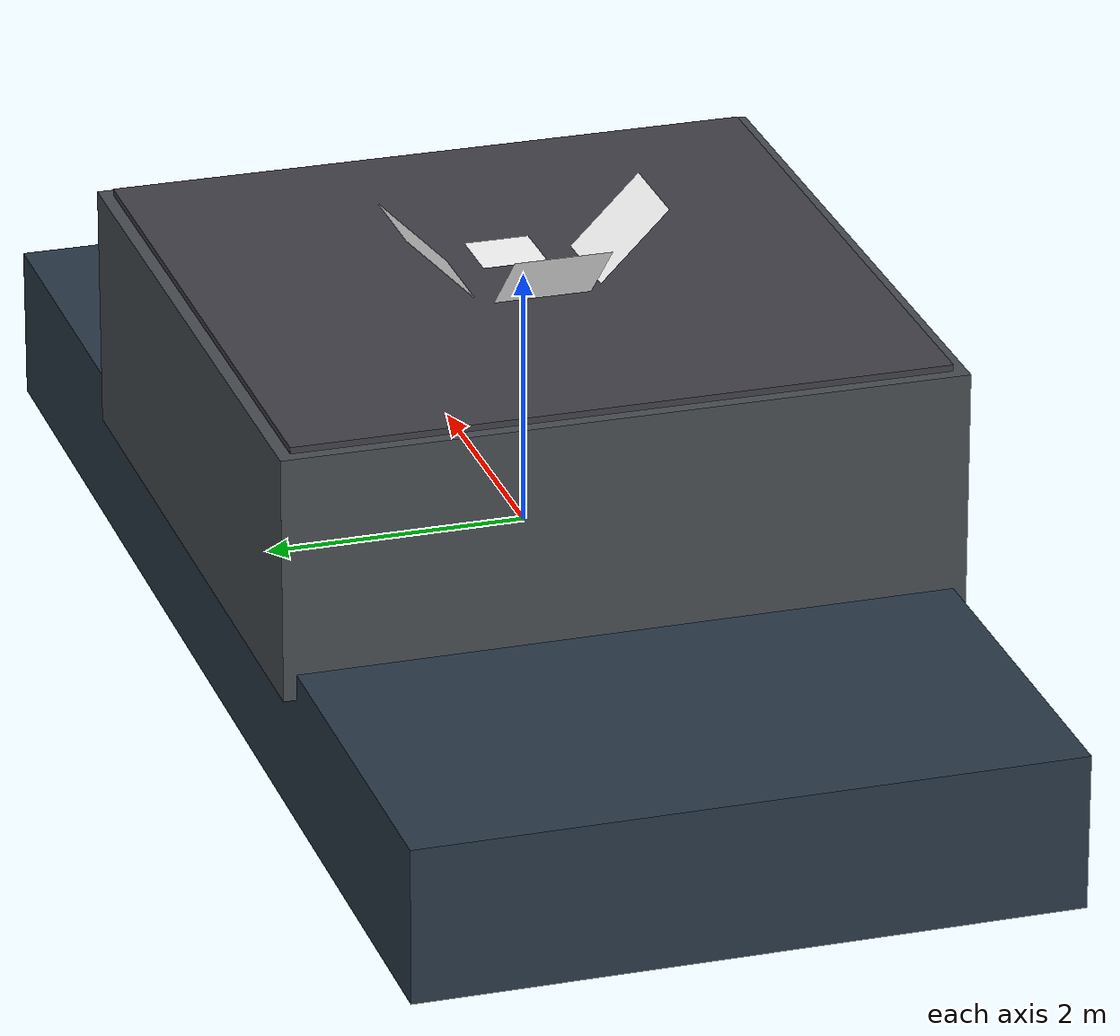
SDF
<?xml version="1.0" encoding="UTF-8"?>
<sdf version="1.9">
  <model name="landing_vessel">
    <!-- 模型原点即 vessel_body 参考点，neutral world z≈0；landing deck 固定在 +2 m。 -->
    <pose>0 0 0 0 0 0</pose>
    <static>false</static>
    <self_collide>false</self_collide>

    <link name="vessel_body">
      <!-- 第一版只做解析刚体运动，不启用重力、浮力或水动力。 -->
      <gravity>false</gravity>
      <inertial>
        <mass>12000</mass>
        <inertia>
          <ixx>34250</ixx>
          <iyy>145000</iyy>
          <izz>171250</izz>
        </inertia>
      </inertial>

      <collision name="hull_collision">
        <pose>0 0 -0.35 0 0 0</pose>
        <geometry>
          <box><size>11 5 1.2</size></box>
        </geometry>
      </collision>
      <visual name="hull_visual">
        <pose>0 0 -0.35 0 0 0</pose>
        <geometry>
          <box><size>11 5 1.2</size></box>
        </geometry>
        <material>
          <ambient>0.12 0.16 0.20 1</ambient>
          <diffuse>0.16 0.22 0.28 1</diffuse>
          <specular>0.08 0.08 0.08 1</specular>
        </material>
      </visual>

      <collision name="deck_support_collision">
        <pose>0 0 1.0 0 0 0</pose>
        <geometry>
          <box><size>5.2 5.2 1.9</size></box>
        </geometry>
      </collision>
      <visual name="deck_support_visual">
        <pose>0 0 1.0 0 0 0</pose>
        <geometry>
          <box><size>5.2 5.2 1.9</size></box>
        </geometry>
        <material>
          <ambient>0.22 0.24 0.26 1</ambient>
          <diffuse>0.28 0.30 0.32 1</diffuse>
          <specular>0.05 0.05 0.05 1</specular>
        </material>
      </visual>

      <!-- landing_deck frame 定义在甲板表面中心；下列 Marker pose 与 legacy 完全一致。 -->
      <collision name="landing_deck_collision">
        <pose relative_to="landing_deck">0 0 -0.05 0 0 0</pose>
        <geometry>
          <box><size>5 5 0.1</size></box>
        </geometry>
        <surface>
          <friction>
            <ode><mu>1.0</mu><mu2>1.0</mu2></ode>
          </friction>
        </surface>
      </collision>
      <visual name="landing_deck_visual">
        <pose relative_to="landing_deck">0 0 -0.05 0 0 0</pose>
        <geometry>
          <box><size>5 5 0.1</size></box>
        </geometry>
        <material>
          <ambient>0.25 0.25 0.28 1</ambient>
          <diffuse>0.25 0.25 0.28 1</diffuse>
          <specular>0.05 0.05 0.05 1</specular>
        </material>
      </visual>

      <visual name="aruco_marker_far_visual">
        <pose relative_to="landing_deck">0.45 0 0.001 0 0 0</pose>
        <cast_shadows>false</cast_shadows>
        <geometry><plane><normal>0 0 1</normal><size>0.5 0.5</size></plane></geometry>
        <material>
          <diffuse>1 1 1 1</diffuse><specular>0.4 0.4 0.4 1</specular>
          <pbr><metal><albedo_map>model://arucotag/arucotag.png</albedo_map></metal></pbr>
        </material>
      </visual>

      <visual name="aruco_marker_far_secondary_visual">
        <pose relative_to="landing_deck">-0.75 0 0.2851650429449553 0 0.7853981633974483 0</pose>
        <cast_shadows>false</cast_shadows>
        <geometry><plane><normal>0 0 1</normal><size>0.75 0.75</size></plane></geometry>
        <material>
          <diffuse>1 1 1 1</diffuse><specular>0.4 0.4 0.4 1</specular>
          <pbr><metal><albedo_map>model://moving_deck/aruco_id4.pgm</albedo_map></metal></pbr>
        </material>
      </visual>

      <visual name="aruco_marker_far_secondary_roll_positive_visual">
        <pose relative_to="landing_deck">0 0.75 0.2851650429449553 0.7853981633974483 0 0</pose>
        <cast_shadows>false</cast_shadows>
        <geometry><plane><normal>0 0 1</normal><size>0.75 0.75</size></plane></geometry>
        <material>
          <diffuse>1 1 1 1</diffuse><specular>0.4 0.4 0.4 1</specular>
          <pbr><metal><albedo_map>model://moving_deck/aruco_id5.pgm</albedo_map></metal></pbr>
        </material>
      </visual>

      <visual name="aruco_marker_far_secondary_roll_negative_visual">
        <pose relative_to="landing_deck">0 -0.75 0.2851650429449553 -0.7853981633974483 0 0</pose>
        <cast_shadows>false</cast_shadows>
        <geometry><plane><normal>0 0 1</normal><size>0.75 0.75</size></plane></geometry>
        <material>
          <diffuse>1 1 1 1</diffuse><specular>0.4 0.4 0.4 1</specular>
          <pbr><metal><albedo_map>model://moving_deck/aruco_id6.pgm</albedo_map></metal></pbr>
        </material>
      </visual>

      <visual name="aruco_marker_near_visual">
        <pose relative_to="landing_deck">-0.18 0 0.002 0 0 0</pose>
        <cast_shadows>false</cast_shadows>
        <geometry><plane><normal>0 0 1</normal><size>0.20 0.20</size></plane></geometry>
        <material>
          <diffuse>1 1 1 1</diffuse><specular>0.4 0.4 0.4 1</specular>
          <pbr><metal><albedo_map>model://moving_deck/aruco_id1.pgm</albedo_map></metal></pbr>
        </material>
      </visual>

      <visual name="aruco_marker_ultra_near_visual">
        <pose relative_to="landing_deck">0.05 0 0.003 0 0 0</pose>
        <cast_shadows>false</cast_shadows>
        <geometry><plane><normal>0 0 1</normal><size>0.04 0.04</size></plane></geometry>
        <material>
          <diffuse>1 1 1 1</diffuse><specular>0.4 0.4 0.4 1</specular>
          <pbr><metal><albedo_map>model://moving_deck/aruco_id2.pgm</albedo_map></metal></pbr>
        </material>
      </visual>

      <visual name="aruco_marker_contact_visual">
        <pose relative_to="landing_deck">0 0 0.004 0 0 0</pose>
        <cast_shadows>false</cast_shadows>
        <geometry><plane><normal>0 0 1</normal><size>0.02 0.02</size></plane></geometry>
        <material>
          <diffuse>1 1 1 1</diffuse><specular>0.4 0.4 0.4 1</specular>
          <pbr><metal><albedo_map>model://moving_deck/aruco_id3.pgm</albedo_map></metal></pbr>
        </material>
      </visual>
    </link>

    <frame name="landing_deck" attached_to="vessel_body">
      <pose>0 0 2 0 0 0</pose>
    </frame>

    <plugin filename="gz-sim-velocity-control-system" name="gz::sim::systems::VelocityControl"/>
    <plugin filename="gz-sim-odometry-publisher-system" name="gz::sim::systems::OdometryPublisher">
      <odom_frame>world</odom_frame>
      <robot_base_frame>vessel_body</robot_base_frame>
      <dimensions>3</dimensions>
      <odom_publish_frequency>50</odom_publish_frequency>
      <odom_topic>/simulation/deck/ground_truth_raw</odom_topic>
    </plugin>
  </model>
</sdf>
